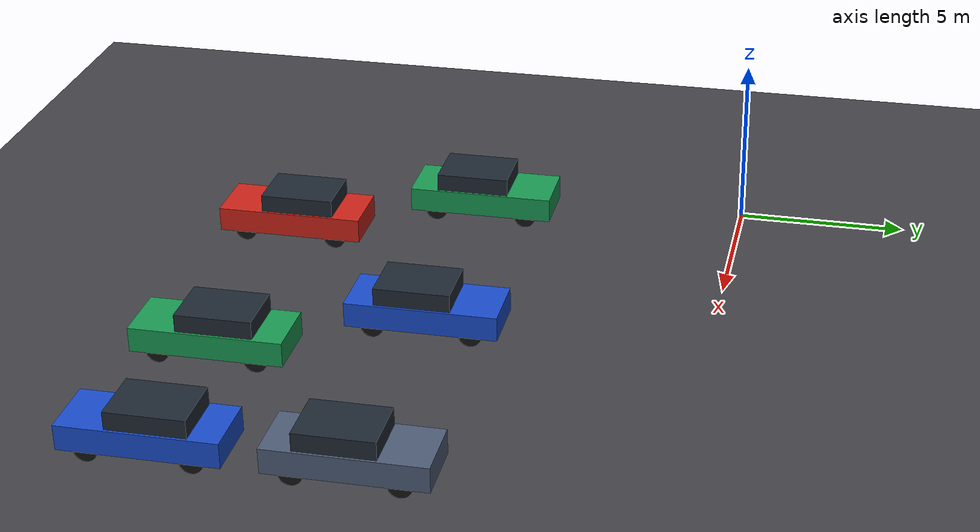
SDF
<sdf version="1.10">
 <world name="parking_lot">
  <model name="ground">
   <static>true</static>
   <link name="link">
    <collision name="c">
     <geometry><plane><normal>0 0 1</normal><size>78.0 70.1</size></plane></geometry>
     <surface><friction><ode><mu>1.0</mu><mu2>1.0</mu2></ode></friction></surface>
    </collision>
    <visual name="floor_vis">
     <pose>0.0000 0.0000 -0.0100 0 0 0.000000</pose>
     <geometry><box><size>58.0000 50.1000 0.0200</size></box></geometry>
     <material>
      <ambient>0.22 0.22 0.24 1</ambient>
      <diffuse>0.26 0.26 0.28 1</diffuse>
      <specular>0.1 0.1 0.1 1</specular>
     </material>
    </visual>
   </link>
  </model>
  <model name="parked_car_A09">
   <static>true</static>
   <pose>3.7500 -13.3500 0 0 0 -1.570796</pose>
   <link name="link">
    <collision name="body_col">
     <pose>0.0000 0.0000 0.6300 0 0 0.000000</pose>
     <geometry><box><size>4.4000 1.8000 0.7200</size></box></geometry>
    </collision>
    <visual name="body_vis">
     <pose>0.0000 0.0000 0.6300 0 0 0.000000</pose>
     <geometry><box><size>4.4000 1.8000 0.7200</size></box></geometry>
     <material>
      <ambient>0.55 0.08 0.06 1</ambient>
      <diffuse>0.80 0.14 0.10 1</diffuse>
      <specular>0.1 0.1 0.1 1</specular>
     </material>
    </visual>
    <collision name="cabin_col">
     <pose>-0.2500 0.0000 1.2500 0 0 0.000000</pose>
     <geometry><box><size>2.2000 1.6560 0.5200</size></box></geometry>
    </collision>
    <visual name="cabin_vis">
     <pose>-0.2500 0.0000 1.2500 0 0 0.000000</pose>
     <geometry><box><size>2.2000 1.6560 0.5200</size></box></geometry>
     <material>
      <ambient>0.06 0.08 0.10 1</ambient>
      <diffuse>0.12 0.16 0.20 1</diffuse>
      <specular>0.1 0.1 0.1 1</specular>
     </material>
    </visual>
    <collision name="w_fl_col">
     <pose>1.4080 0.7560 0.3300 1.5708 0 0</pose>
     <geometry><cylinder><radius>0.3300</radius><length>0.2200</length></cylinder></geometry>
    </collision>
    <visual name="w_fl_vis">
     <pose>1.4080 0.7560 0.3300 1.5708 0 0</pose>
     <geometry><cylinder><radius>0.3300</radius><length>0.2200</length></cylinder></geometry>
     <material>
      <ambient>0.03 0.03 0.03 1</ambient>
      <diffuse>0.08 0.08 0.08 1</diffuse>
      <specular>0.1 0.1 0.1 1</specular>
     </material>
    </visual>
    <collision name="w_fr_col">
     <pose>1.4080 -0.7560 0.3300 1.5708 0 0</pose>
     <geometry><cylinder><radius>0.3300</radius><length>0.2200</length></cylinder></geometry>
    </collision>
    <visual name="w_fr_vis">
     <pose>1.4080 -0.7560 0.3300 1.5708 0 0</pose>
     <geometry><cylinder><radius>0.3300</radius><length>0.2200</length></cylinder></geometry>
     <material>
      <ambient>0.03 0.03 0.03 1</ambient>
      <diffuse>0.08 0.08 0.08 1</diffuse>
      <specular>0.1 0.1 0.1 1</specular>
     </material>
    </visual>
    <collision name="w_rl_col">
     <pose>-1.4080 0.7560 0.3300 1.5708 0 0</pose>
     <geometry><cylinder><radius>0.3300</radius><length>0.2200</length></cylinder></geometry>
    </collision>
    <visual name="w_rl_vis">
     <pose>-1.4080 0.7560 0.3300 1.5708 0 0</pose>
     <geometry><cylinder><radius>0.3300</radius><length>0.2200</length></cylinder></geometry>
     <material>
      <ambient>0.03 0.03 0.03 1</ambient>
      <diffuse>0.08 0.08 0.08 1</diffuse>
      <specular>0.1 0.1 0.1 1</specular>
     </material>
    </visual>
    <collision name="w_rr_col">
     <pose>-1.4080 -0.7560 0.3300 1.5708 0 0</pose>
     <geometry><cylinder><radius>0.3300</radius><length>0.2200</length></cylinder></geometry>
    </collision>
    <visual name="w_rr_vis">
     <pose>-1.4080 -0.7560 0.3300 1.5708 0 0</pose>
     <geometry><cylinder><radius>0.3300</radius><length>0.2200</length></cylinder></geometry>
     <material>
      <ambient>0.03 0.03 0.03 1</ambient>
      <diffuse>0.08 0.08 0.08 1</diffuse>
      <specular>0.1 0.1 0.1 1</specular>
     </material>
    </visual>
   </link>
  </model>
  <model name="parked_car_A12">
   <static>true</static>
   <pose>11.2500 -13.3500 0 0 0 -1.570796</pose>
   <link name="link">
    <collision name="body_col">
     <pose>0.0000 0.0000 0.6300 0 0 0.000000</pose>
     <geometry><box><size>4.4000 1.8000 0.7200</size></box></geometry>
    </collision>
    <visual name="body_vis">
     <pose>0.0000 0.0000 0.6300 0 0 0.000000</pose>
     <geometry><box><size>4.4000 1.8000 0.7200</size></box></geometry>
     <material>
      <ambient>0.05 0.35 0.18 1</ambient>
      <diffuse>0.10 0.60 0.32 1</diffuse>
      <specular>0.1 0.1 0.1 1</specular>
     </material>
    </visual>
    <collision name="cabin_col">
     <pose>-0.2500 0.0000 1.2500 0 0 0.000000</pose>
     <geometry><box><size>2.2000 1.6560 0.5200</size></box></geometry>
    </collision>
    <visual name="cabin_vis">
     <pose>-0.2500 0.0000 1.2500 0 0 0.000000</pose>
     <geometry><box><size>2.2000 1.6560 0.5200</size></box></geometry>
     <material>
      <ambient>0.06 0.08 0.10 1</ambient>
      <diffuse>0.12 0.16 0.20 1</diffuse>
      <specular>0.1 0.1 0.1 1</specular>
     </material>
    </visual>
    <collision name="w_fl_col">
     <pose>1.4080 0.7560 0.3300 1.5708 0 0</pose>
     <geometry><cylinder><radius>0.3300</radius><length>0.2200</length></cylinder></geometry>
    </collision>
    <visual name="w_fl_vis">
     <pose>1.4080 0.7560 0.3300 1.5708 0 0</pose>
     <geometry><cylinder><radius>0.3300</radius><length>0.2200</length></cylinder></geometry>
     <material>
      <ambient>0.03 0.03 0.03 1</ambient>
      <diffuse>0.08 0.08 0.08 1</diffuse>
      <specular>0.1 0.1 0.1 1</specular>
     </material>
    </visual>
    <collision name="w_fr_col">
     <pose>1.4080 -0.7560 0.3300 1.5708 0 0</pose>
     <geometry><cylinder><radius>0.3300</radius><length>0.2200</length></cylinder></geometry>
    </collision>
    <visual name="w_fr_vis">
     <pose>1.4080 -0.7560 0.3300 1.5708 0 0</pose>
     <geometry><cylinder><radius>0.3300</radius><length>0.2200</length></cylinder></geometry>
     <material>
      <ambient>0.03 0.03 0.03 1</ambient>
      <diffuse>0.08 0.08 0.08 1</diffuse>
      <specular>0.1 0.1 0.1 1</specular>
     </material>
    </visual>
    <collision name="w_rl_col">
     <pose>-1.4080 0.7560 0.3300 1.5708 0 0</pose>
     <geometry><cylinder><radius>0.3300</radius><length>0.2200</length></cylinder></geometry>
    </collision>
    <visual name="w_rl_vis">
     <pose>-1.4080 0.7560 0.3300 1.5708 0 0</pose>
     <geometry><cylinder><radius>0.3300</radius><length>0.2200</length></cylinder></geometry>
     <material>
      <ambient>0.03 0.03 0.03 1</ambient>
      <diffuse>0.08 0.08 0.08 1</diffuse>
      <specular>0.1 0.1 0.1 1</specular>
     </material>
    </visual>
    <collision name="w_rr_col">
     <pose>-1.4080 -0.7560 0.3300 1.5708 0 0</pose>
     <geometry><cylinder><radius>0.3300</radius><length>0.2200</length></cylinder></geometry>
    </collision>
    <visual name="w_rr_vis">
     <pose>-1.4080 -0.7560 0.3300 1.5708 0 0</pose>
     <geometry><cylinder><radius>0.3300</radius><length>0.2200</length></cylinder></geometry>
     <material>
      <ambient>0.03 0.03 0.03 1</ambient>
      <diffuse>0.08 0.08 0.08 1</diffuse>
      <specular>0.1 0.1 0.1 1</specular>
     </material>
    </visual>
   </link>
  </model>
  <model name="parked_car_A14">
   <static>true</static>
   <pose>16.2500 -13.3500 0 0 0 -1.570796</pose>
   <link name="link">
    <collision name="body_col">
     <pose>0.0000 0.0000 0.6300 0 0 0.000000</pose>
     <geometry><box><size>4.4000 1.8000 0.7200</size></box></geometry>
    </collision>
    <visual name="body_vis">
     <pose>0.0000 0.0000 0.6300 0 0 0.000000</pose>
     <geometry><box><size>4.4000 1.8000 0.7200</size></box></geometry>
     <material>
      <ambient>0.06 0.18 0.55 1</ambient>
      <diffuse>0.10 0.30 0.80 1</diffuse>
      <specular>0.1 0.1 0.1 1</specular>
     </material>
    </visual>
    <collision name="cabin_col">
     <pose>-0.2500 0.0000 1.2500 0 0 0.000000</pose>
     <geometry><box><size>2.2000 1.6560 0.5200</size></box></geometry>
    </collision>
    <visual name="cabin_vis">
     <pose>-0.2500 0.0000 1.2500 0 0 0.000000</pose>
     <geometry><box><size>2.2000 1.6560 0.5200</size></box></geometry>
     <material>
      <ambient>0.06 0.08 0.10 1</ambient>
      <diffuse>0.12 0.16 0.20 1</diffuse>
      <specular>0.1 0.1 0.1 1</specular>
     </material>
    </visual>
    <collision name="w_fl_col">
     <pose>1.4080 0.7560 0.3300 1.5708 0 0</pose>
     <geometry><cylinder><radius>0.3300</radius><length>0.2200</length></cylinder></geometry>
    </collision>
    <visual name="w_fl_vis">
     <pose>1.4080 0.7560 0.3300 1.5708 0 0</pose>
     <geometry><cylinder><radius>0.3300</radius><length>0.2200</length></cylinder></geometry>
     <material>
      <ambient>0.03 0.03 0.03 1</ambient>
      <diffuse>0.08 0.08 0.08 1</diffuse>
      <specular>0.1 0.1 0.1 1</specular>
     </material>
    </visual>
    <collision name="w_fr_col">
     <pose>1.4080 -0.7560 0.3300 1.5708 0 0</pose>
     <geometry><cylinder><radius>0.3300</radius><length>0.2200</length></cylinder></geometry>
    </collision>
    <visual name="w_fr_vis">
     <pose>1.4080 -0.7560 0.3300 1.5708 0 0</pose>
     <geometry><cylinder><radius>0.3300</radius><length>0.2200</length></cylinder></geometry>
     <material>
      <ambient>0.03 0.03 0.03 1</ambient>
      <diffuse>0.08 0.08 0.08 1</diffuse>
      <specular>0.1 0.1 0.1 1</specular>
     </material>
    </visual>
    <collision name="w_rl_col">
     <pose>-1.4080 0.7560 0.3300 1.5708 0 0</pose>
     <geometry><cylinder><radius>0.3300</radius><length>0.2200</length></cylinder></geometry>
    </collision>
    <visual name="w_rl_vis">
     <pose>-1.4080 0.7560 0.3300 1.5708 0 0</pose>
     <geometry><cylinder><radius>0.3300</radius><length>0.2200</length></cylinder></geometry>
     <material>
      <ambient>0.03 0.03 0.03 1</ambient>
      <diffuse>0.08 0.08 0.08 1</diffuse>
      <specular>0.1 0.1 0.1 1</specular>
     </material>
    </visual>
    <collision name="w_rr_col">
     <pose>-1.4080 -0.7560 0.3300 1.5708 0 0</pose>
     <geometry><cylinder><radius>0.3300</radius><length>0.2200</length></cylinder></geometry>
    </collision>
    <visual name="w_rr_vis">
     <pose>-1.4080 -0.7560 0.3300 1.5708 0 0</pose>
     <geometry><cylinder><radius>0.3300</radius><length>0.2200</length></cylinder></geometry>
     <material>
      <ambient>0.03 0.03 0.03 1</ambient>
      <diffuse>0.08 0.08 0.08 1</diffuse>
      <specular>0.1 0.1 0.1 1</specular>
     </material>
    </visual>
   </link>
  </model>
  <model name="parked_car_B08">
   <static>true</static>
   <pose>1.2500 -7.9500 0 0 0 1.570796</pose>
   <link name="link">
    <collision name="body_col">
     <pose>0.0000 0.0000 0.6300 0 0 0.000000</pose>
     <geometry><box><size>4.4000 1.8000 0.7200</size></box></geometry>
    </collision>
    <visual name="body_vis">
     <pose>0.0000 0.0000 0.6300 0 0 0.000000</pose>
     <geometry><box><size>4.4000 1.8000 0.7200</size></box></geometry>
     <material>
      <ambient>0.05 0.35 0.18 1</ambient>
      <diffuse>0.10 0.60 0.32 1</diffuse>
      <specular>0.1 0.1 0.1 1</specular>
     </material>
    </visual>
    <collision name="cabin_col">
     <pose>-0.2500 0.0000 1.2500 0 0 0.000000</pose>
     <geometry><box><size>2.2000 1.6560 0.5200</size></box></geometry>
    </collision>
    <visual name="cabin_vis">
     <pose>-0.2500 0.0000 1.2500 0 0 0.000000</pose>
     <geometry><box><size>2.2000 1.6560 0.5200</size></box></geometry>
     <material>
      <ambient>0.06 0.08 0.10 1</ambient>
      <diffuse>0.12 0.16 0.20 1</diffuse>
      <specular>0.1 0.1 0.1 1</specular>
     </material>
    </visual>
    <collision name="w_fl_col">
     <pose>1.4080 0.7560 0.3300 1.5708 0 0</pose>
     <geometry><cylinder><radius>0.3300</radius><length>0.2200</length></cylinder></geometry>
    </collision>
    <visual name="w_fl_vis">
     <pose>1.4080 0.7560 0.3300 1.5708 0 0</pose>
     <geometry><cylinder><radius>0.3300</radius><length>0.2200</length></cylinder></geometry>
     <material>
      <ambient>0.03 0.03 0.03 1</ambient>
      <diffuse>0.08 0.08 0.08 1</diffuse>
      <specular>0.1 0.1 0.1 1</specular>
     </material>
    </visual>
    <collision name="w_fr_col">
     <pose>1.4080 -0.7560 0.3300 1.5708 0 0</pose>
     <geometry><cylinder><radius>0.3300</radius><length>0.2200</length></cylinder></geometry>
    </collision>
    <visual name="w_fr_vis">
     <pose>1.4080 -0.7560 0.3300 1.5708 0 0</pose>
     <geometry><cylinder><radius>0.3300</radius><length>0.2200</length></cylinder></geometry>
     <material>
      <ambient>0.03 0.03 0.03 1</ambient>
      <diffuse>0.08 0.08 0.08 1</diffuse>
      <specular>0.1 0.1 0.1 1</specular>
     </material>
    </visual>
    <collision name="w_rl_col">
     <pose>-1.4080 0.7560 0.3300 1.5708 0 0</pose>
     <geometry><cylinder><radius>0.3300</radius><length>0.2200</length></cylinder></geometry>
    </collision>
    <visual name="w_rl_vis">
     <pose>-1.4080 0.7560 0.3300 1.5708 0 0</pose>
     <geometry><cylinder><radius>0.3300</radius><length>0.2200</length></cylinder></geometry>
     <material>
      <ambient>0.03 0.03 0.03 1</ambient>
      <diffuse>0.08 0.08 0.08 1</diffuse>
      <specular>0.1 0.1 0.1 1</specular>
     </material>
    </visual>
    <collision name="w_rr_col">
     <pose>-1.4080 -0.7560 0.3300 1.5708 0 0</pose>
     <geometry><cylinder><radius>0.3300</radius><length>0.2200</length></cylinder></geometry>
    </collision>
    <visual name="w_rr_vis">
     <pose>-1.4080 -0.7560 0.3300 1.5708 0 0</pose>
     <geometry><cylinder><radius>0.3300</radius><length>0.2200</length></cylinder></geometry>
     <material>
      <ambient>0.03 0.03 0.03 1</ambient>
      <diffuse>0.08 0.08 0.08 1</diffuse>
      <specular>0.1 0.1 0.1 1</specular>
     </material>
    </visual>
   </link>
  </model>
  <model name="parked_car_B11">
   <static>true</static>
   <pose>8.7500 -7.9500 0 0 0 1.570796</pose>
   <link name="link">
    <collision name="body_col">
     <pose>0.0000 0.0000 0.6300 0 0 0.000000</pose>
     <geometry><box><size>4.4000 1.8000 0.7200</size></box></geometry>
    </collision>
    <visual name="body_vis">
     <pose>0.0000 0.0000 0.6300 0 0 0.000000</pose>
     <geometry><box><size>4.4000 1.8000 0.7200</size></box></geometry>
     <material>
      <ambient>0.06 0.18 0.55 1</ambient>
      <diffuse>0.10 0.30 0.80 1</diffuse>
      <specular>0.1 0.1 0.1 1</specular>
     </material>
    </visual>
    <collision name="cabin_col">
     <pose>-0.2500 0.0000 1.2500 0 0 0.000000</pose>
     <geometry><box><size>2.2000 1.6560 0.5200</size></box></geometry>
    </collision>
    <visual name="cabin_vis">
     <pose>-0.2500 0.0000 1.2500 0 0 0.000000</pose>
     <geometry><box><size>2.2000 1.6560 0.5200</size></box></geometry>
     <material>
      <ambient>0.06 0.08 0.10 1</ambient>
      <diffuse>0.12 0.16 0.20 1</diffuse>
      <specular>0.1 0.1 0.1 1</specular>
     </material>
    </visual>
    <collision name="w_fl_col">
     <pose>1.4080 0.7560 0.3300 1.5708 0 0</pose>
     <geometry><cylinder><radius>0.3300</radius><length>0.2200</length></cylinder></geometry>
    </collision>
    <visual name="w_fl_vis">
     <pose>1.4080 0.7560 0.3300 1.5708 0 0</pose>
     <geometry><cylinder><radius>0.3300</radius><length>0.2200</length></cylinder></geometry>
     <material>
      <ambient>0.03 0.03 0.03 1</ambient>
      <diffuse>0.08 0.08 0.08 1</diffuse>
      <specular>0.1 0.1 0.1 1</specular>
     </material>
    </visual>
    <collision name="w_fr_col">
     <pose>1.4080 -0.7560 0.3300 1.5708 0 0</pose>
     <geometry><cylinder><radius>0.3300</radius><length>0.2200</length></cylinder></geometry>
    </collision>
    <visual name="w_fr_vis">
     <pose>1.4080 -0.7560 0.3300 1.5708 0 0</pose>
     <geometry><cylinder><radius>0.3300</radius><length>0.2200</length></cylinder></geometry>
     <material>
      <ambient>0.03 0.03 0.03 1</ambient>
      <diffuse>0.08 0.08 0.08 1</diffuse>
      <specular>0.1 0.1 0.1 1</specular>
     </material>
    </visual>
    <collision name="w_rl_col">
     <pose>-1.4080 0.7560 0.3300 1.5708 0 0</pose>
     <geometry><cylinder><radius>0.3300</radius><length>0.2200</length></cylinder></geometry>
    </collision>
    <visual name="w_rl_vis">
     <pose>-1.4080 0.7560 0.3300 1.5708 0 0</pose>
     <geometry><cylinder><radius>0.3300</radius><length>0.2200</length></cylinder></geometry>
     <material>
      <ambient>0.03 0.03 0.03 1</ambient>
      <diffuse>0.08 0.08 0.08 1</diffuse>
      <specular>0.1 0.1 0.1 1</specular>
     </material>
    </visual>
    <collision name="w_rr_col">
     <pose>-1.4080 -0.7560 0.3300 1.5708 0 0</pose>
     <geometry><cylinder><radius>0.3300</radius><length>0.2200</length></cylinder></geometry>
    </collision>
    <visual name="w_rr_vis">
     <pose>-1.4080 -0.7560 0.3300 1.5708 0 0</pose>
     <geometry><cylinder><radius>0.3300</radius><length>0.2200</length></cylinder></geometry>
     <material>
      <ambient>0.03 0.03 0.03 1</ambient>
      <diffuse>0.08 0.08 0.08 1</diffuse>
      <specular>0.1 0.1 0.1 1</specular>
     </material>
    </visual>
   </link>
  </model>
  <model name="parked_car_B14">
   <static>true</static>
   <pose>16.2500 -7.9500 0 0 0 1.570796</pose>
   <link name="link">
    <collision name="body_col">
     <pose>0.0000 0.0000 0.6300 0 0 0.000000</pose>
     <geometry><box><size>4.4000 1.8000 0.7200</size></box></geometry>
    </collision>
    <visual name="body_vis">
     <pose>0.0000 0.0000 0.6300 0 0 0.000000</pose>
     <geometry><box><size>4.4000 1.8000 0.7200</size></box></geometry>
     <material>
      <ambient>0.10 0.12 0.16 1</ambient>
      <diffuse>0.30 0.36 0.46 1</diffuse>
      <specular>0.1 0.1 0.1 1</specular>
     </material>
    </visual>
    <collision name="cabin_col">
     <pose>-0.2500 0.0000 1.2500 0 0 0.000000</pose>
     <geometry><box><size>2.2000 1.6560 0.5200</size></box></geometry>
    </collision>
    <visual name="cabin_vis">
     <pose>-0.2500 0.0000 1.2500 0 0 0.000000</pose>
     <geometry><box><size>2.2000 1.6560 0.5200</size></box></geometry>
     <material>
      <ambient>0.06 0.08 0.10 1</ambient>
      <diffuse>0.12 0.16 0.20 1</diffuse>
      <specular>0.1 0.1 0.1 1</specular>
     </material>
    </visual>
    <collision name="w_fl_col">
     <pose>1.4080 0.7560 0.3300 1.5708 0 0</pose>
     <geometry><cylinder><radius>0.3300</radius><length>0.2200</length></cylinder></geometry>
    </collision>
    <visual name="w_fl_vis">
     <pose>1.4080 0.7560 0.3300 1.5708 0 0</pose>
     <geometry><cylinder><radius>0.3300</radius><length>0.2200</length></cylinder></geometry>
     <material>
      <ambient>0.03 0.03 0.03 1</ambient>
      <diffuse>0.08 0.08 0.08 1</diffuse>
      <specular>0.1 0.1 0.1 1</specular>
     </material>
    </visual>
    <collision name="w_fr_col">
     <pose>1.4080 -0.7560 0.3300 1.5708 0 0</pose>
     <geometry><cylinder><radius>0.3300</radius><length>0.2200</length></cylinder></geometry>
    </collision>
    <visual name="w_fr_vis">
     <pose>1.4080 -0.7560 0.3300 1.5708 0 0</pose>
     <geometry><cylinder><radius>0.3300</radius><length>0.2200</length></cylinder></geometry>
     <material>
      <ambient>0.03 0.03 0.03 1</ambient>
      <diffuse>0.08 0.08 0.08 1</diffuse>
      <specular>0.1 0.1 0.1 1</specular>
     </material>
    </visual>
    <collision name="w_rl_col">
     <pose>-1.4080 0.7560 0.3300 1.5708 0 0</pose>
     <geometry><cylinder><radius>0.3300</radius><length>0.2200</length></cylinder></geometry>
    </collision>
    <visual name="w_rl_vis">
     <pose>-1.4080 0.7560 0.3300 1.5708 0 0</pose>
     <geometry><cylinder><radius>0.3300</radius><length>0.2200</length></cylinder></geometry>
     <material>
      <ambient>0.03 0.03 0.03 1</ambient>
      <diffuse>0.08 0.08 0.08 1</diffuse>
      <specular>0.1 0.1 0.1 1</specular>
     </material>
    </visual>
    <collision name="w_rr_col">
     <pose>-1.4080 -0.7560 0.3300 1.5708 0 0</pose>
     <geometry><cylinder><radius>0.3300</radius><length>0.2200</length></cylinder></geometry>
    </collision>
    <visual name="w_rr_vis">
     <pose>-1.4080 -0.7560 0.3300 1.5708 0 0</pose>
     <geometry><cylinder><radius>0.3300</radius><length>0.2200</length></cylinder></geometry>
     <material>
      <ambient>0.03 0.03 0.03 1</ambient>
      <diffuse>0.08 0.08 0.08 1</diffuse>
      <specular>0.1 0.1 0.1 1</specular>
     </material>
    </visual>
   </link>
  </model>
 </world>
</sdf>
